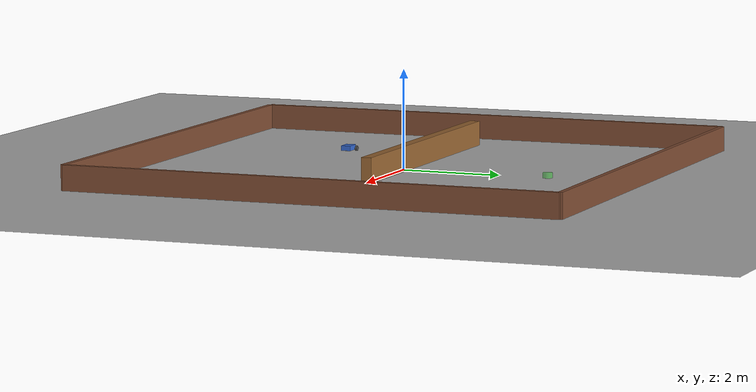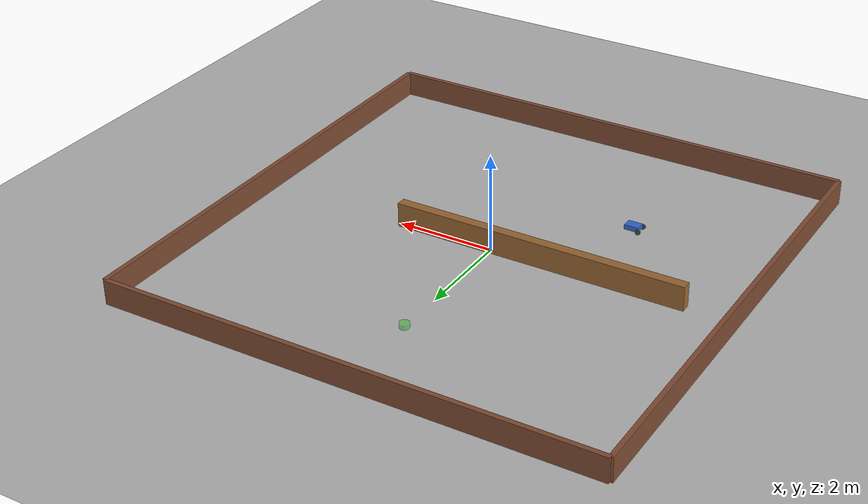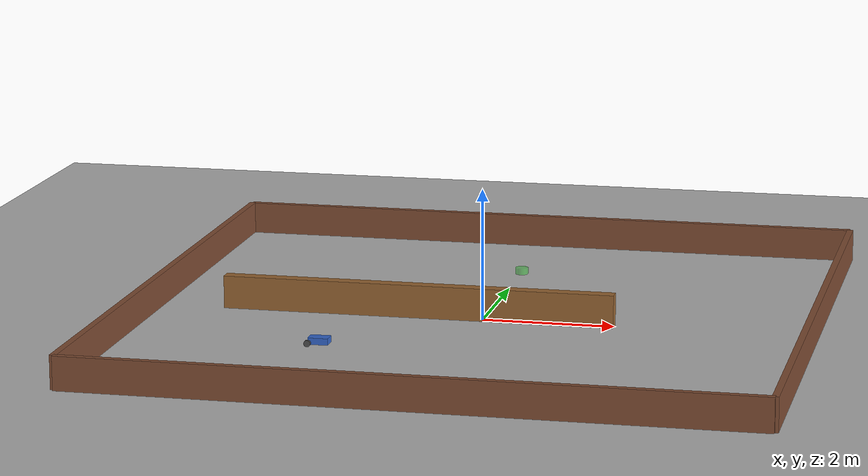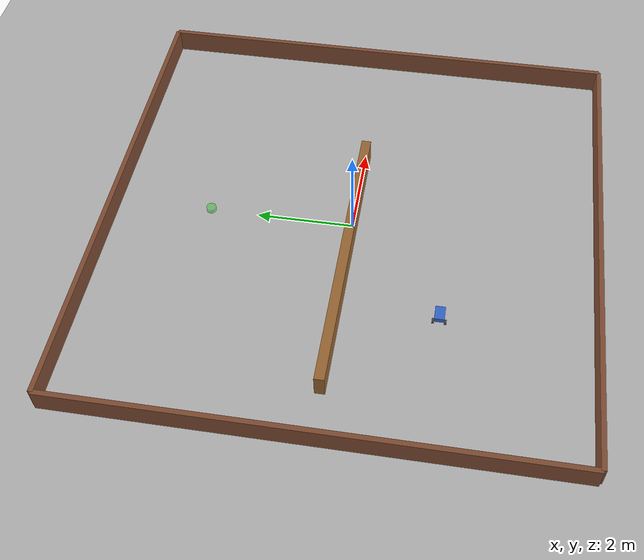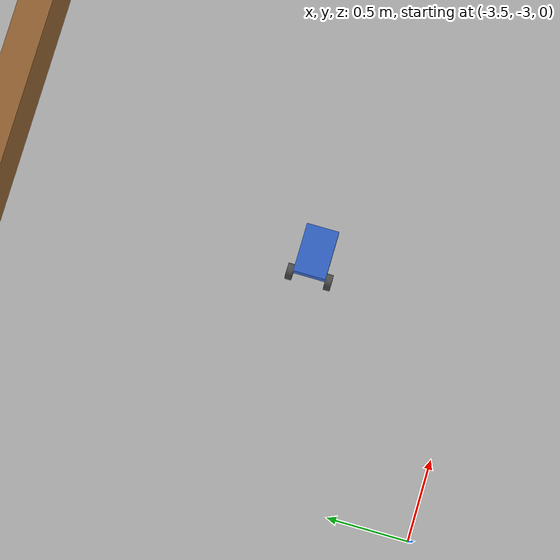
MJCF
<mujoco model="maze">
  <option timestep="0.002" gravity="0 0 -9.81"/>

  <asset>
    <texture name="grid" type="2d" builtin="checker" rgb1="0.8 0.8 0.8" rgb2="0.6 0.6 0.6" width="512" height="512"/>
    <material name="grid_mat" texture="grid" texrepeat="8 8" reflectance="0.1"/>
  </asset>

  <worldbody>
    <!-- Ground plane -->
    <geom name="ground" type="plane" size="10 10 0.1" material="grid_mat"/>

    <!-- Boundary walls -->
    <body name="walls" pos="0 0 0.25">
      <geom name="wall_north" type="box" pos="0 5 0" size="5 0.05 0.25" rgba="0.5 0.3 0.2 1"/>
      <geom name="wall_south" type="box" pos="0 -5 0" size="5 0.05 0.25" rgba="0.5 0.3 0.2 1"/>
      <geom name="wall_east" type="box" pos="5 0 0" size="0.05 5 0.25" rgba="0.5 0.3 0.2 1"/>
      <geom name="wall_west" type="box" pos="-5 0 0" size="0.05 5 0.25" rgba="0.5 0.3 0.2 1"/>
    </body>

    <!-- Internal maze wall: horizontal barrier from x=-4 to x=2 at y=0 -->
    <!-- Center at (-1, 0), half-length 3.0 in x, half-thickness 0.1 in y -->
    <!-- Gap on the right side (x > 2) for the robot to pass through -->
    <body name="maze_wall1" pos="-1 0 0.25">
      <geom name="maze_wall1_geom" type="box" size="3.0 0.1 0.25" rgba="0.6 0.4 0.2 1"/>
    </body>

    <!-- Differential drive robot at (-2, -2) -->
    <body name="robot_chassis" pos="-2 -2 0.1">
      <joint name="robot_free" type="free"/>
      <geom name="chassis" type="box" size="0.15 0.1 0.05" mass="2.0" rgba="0.2 0.4 0.8 1"/>

      <!-- Left wheel -->
      <body name="left_wheel" pos="-0.15 0.12 -0.03">
        <joint name="left_wheel_joint" type="hinge" axis="0 1 0"/>
        <geom name="left_wheel_geom" type="cylinder" size="0.05 0.02" rgba="0.3 0.3 0.3 1"
              euler="90 0 0"/>
      </body>

      <!-- Right wheel -->
      <body name="right_wheel" pos="-0.15 -0.12 -0.03">
        <joint name="right_wheel_joint" type="hinge" axis="0 1 0"/>
        <geom name="right_wheel_geom" type="cylinder" size="0.05 0.02" rgba="0.3 0.3 0.3 1"
              euler="90 0 0"/>
      </body>

      <!-- Caster wheel (passive) -->
      <body name="caster" pos="0.12 0 -0.04">
        <geom name="caster_geom" type="sphere" size="0.02" rgba="0.5 0.5 0.5 1"/>
      </body>
    </body>

    <!-- Goal marker at (0, 3) — on the other side of the horizontal wall -->
    <body name="goal_marker" pos="0 3 0.05">
      <geom name="goal_geom" type="cylinder" size="0.1 0.05" rgba="0.2 0.8 0.2 0.5"/>
    </body>
  </worldbody>

  <actuator>
    <velocity name="left_motor" joint="left_wheel_joint" kv="1"/>
    <velocity name="right_motor" joint="right_wheel_joint" kv="1"/>
  </actuator>
</mujoco>
